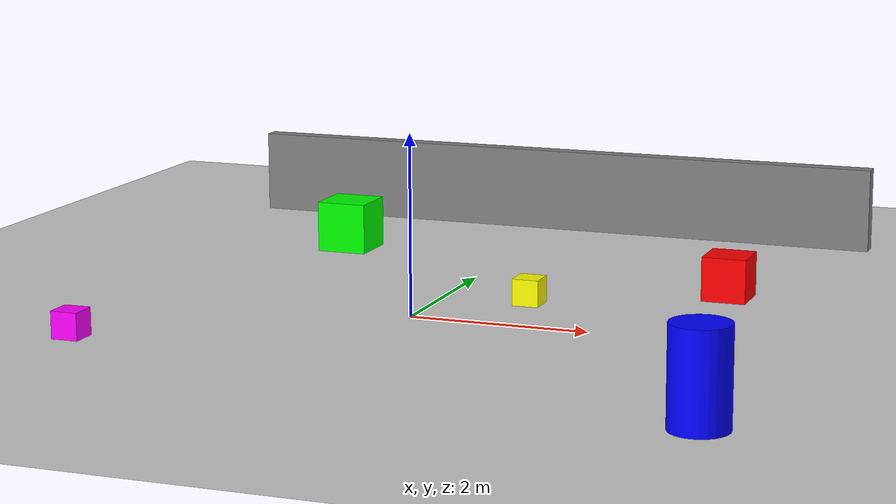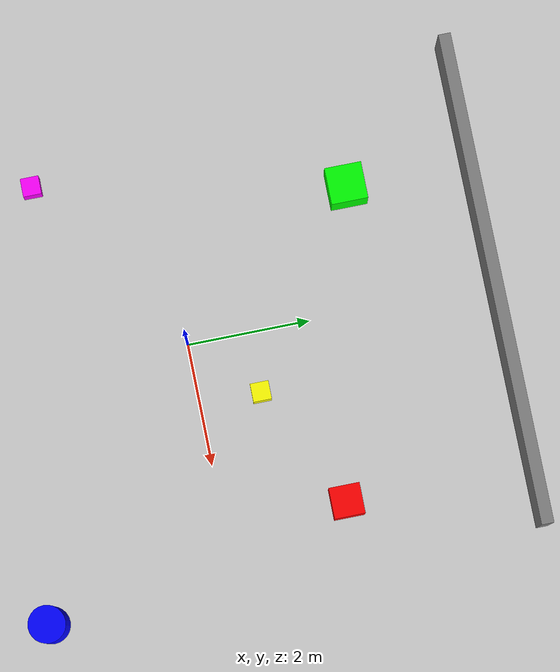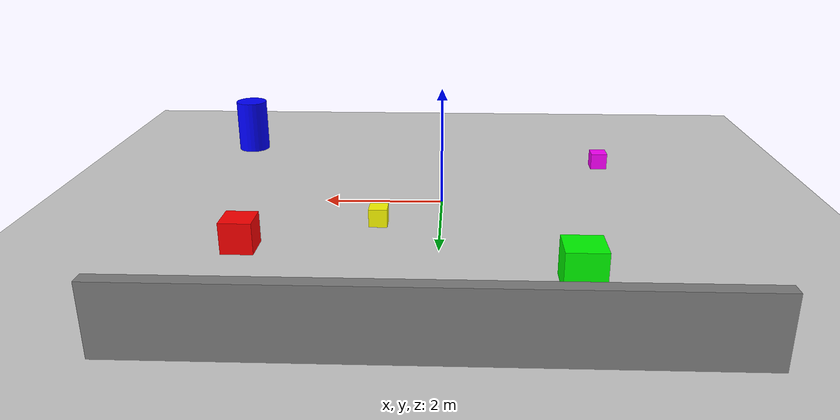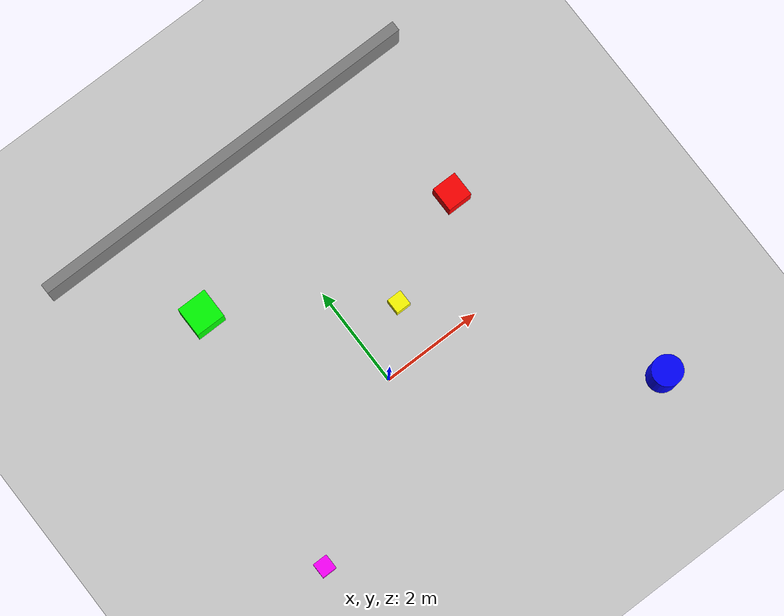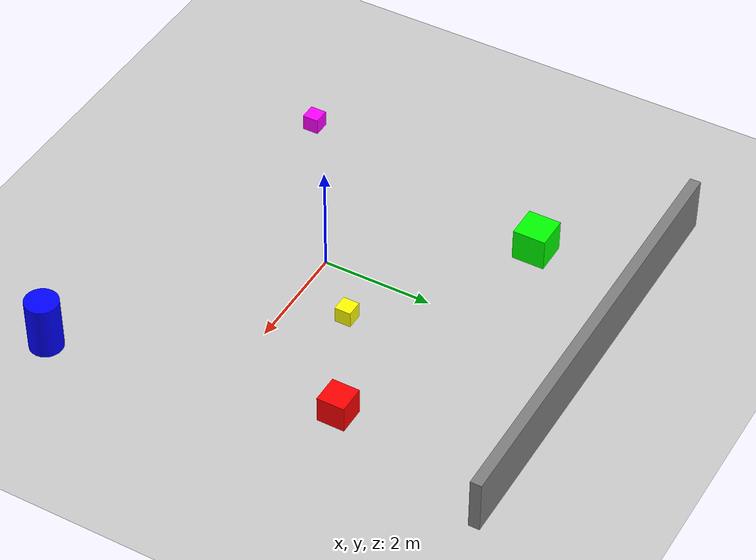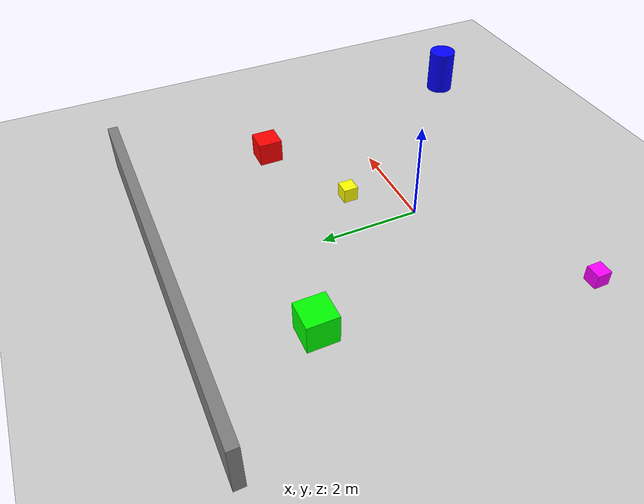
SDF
<?xml version="1.0" ?>
<sdf version="1.8">
  <world name="leo_world">

    <!-- Physics -->
    <physics name="1ms" type="ignored">
      <max_step_size>0.001</max_step_size>
      <real_time_factor>1.0</real_time_factor>
    </physics>

    <!-- Plugin for physics -->
    <plugin filename="gz-sim-physics-system" name="gz::sim::systems::Physics">
    </plugin>

    <!-- Plugin for user commands -->
    <plugin filename="gz-sim-user-commands-system" name="gz::sim::systems::UserCommands">
    </plugin>

    <!-- Plugin for scene -->
    <plugin filename="gz-sim-scene-broadcaster-system" name="gz::sim::systems::SceneBroadcaster">
    </plugin>

    <!-- Plugin for sensors -->
    <plugin filename="gz-sim-sensors-system" name="gz::sim::systems::Sensors">
      <render_engine>ogre2</render_engine>
    </plugin>

    <!-- Light -->
    <light type="directional" name="sun">
      <cast_shadows>true</cast_shadows>
      <pose>0 0 10 0 0 0</pose>
      <diffuse>0.8 0.8 0.8 1</diffuse>
      <specular>0.2 0.2 0.2 1</specular>
      <attenuation>
        <range>1000</range>
        <constant>0.9</constant>
        <linear>0.01</linear>
        <quadratic>0.001</quadratic>
      </attenuation>
      <direction>-0.5 0.1 -0.9</direction>
    </light>

    <!-- Ground plane -->
    <model name="ground_plane">
      <static>true</static>
      <link name="link">
        <collision name="collision">
          <geometry>
            <plane>
              <normal>0 0 1</normal>
              <size>100 100</size>
            </plane>
          </geometry>
        </collision>
        <visual name="visual">
          <geometry>
            <plane>
              <normal>0 0 1</normal>
              <size>100 100</size>
            </plane>
          </geometry>
          <material>
            <ambient>0.8 0.8 0.8 1</ambient>
            <diffuse>0.8 0.8 0.8 1</diffuse>
            <specular>0.8 0.8 0.8 1</specular>
          </material>
        </visual>
      </link>
    </model>

    <!-- Obstacles for object detection -->

    <!-- Box 1 -->
    <model name="box_1">
      <pose>3 2 0.25 0 0 0</pose>
      <static>true</static>
      <link name="link">
        <collision name="collision">
          <geometry>
            <box>
              <size>0.5 0.5 0.5</size>
            </box>
          </geometry>
        </collision>
        <visual name="visual">
          <geometry>
            <box>
              <size>0.5 0.5 0.5</size>
            </box>
          </geometry>
          <material>
            <ambient>1 0 0 1</ambient>
            <diffuse>1 0 0 1</diffuse>
          </material>
        </visual>
      </link>
    </model>

    <!-- Box 2 -->
    <model name="box_2">
      <pose>-2 3 0.3 0 0 0</pose>
      <static>true</static>
      <link name="link">
        <collision name="collision">
          <geometry>
            <box>
              <size>0.6 0.6 0.6</size>
            </box>
          </geometry>
        </collision>
        <visual name="visual">
          <geometry>
            <box>
              <size>0.6 0.6 0.6</size>
            </box>
          </geometry>
          <material>
            <ambient>0 1 0 1</ambient>
            <diffuse>0 1 0 1</diffuse>
          </material>
        </visual>
      </link>
    </model>

    <!-- Cylinder 1 -->
    <model name="cylinder_1">
      <pose>4 -3 0.5 0 0 0</pose>
      <static>true</static>
      <link name="link">
        <collision name="collision">
          <geometry>
            <cylinder>
              <radius>0.3</radius>
              <length>1.0</length>
            </cylinder>
          </geometry>
        </collision>
        <visual name="visual">
          <geometry>
            <cylinder>
              <radius>0.3</radius>
              <length>1.0</length>
            </cylinder>
          </geometry>
          <material>
            <ambient>0 0 1 1</ambient>
            <diffuse>0 0 1 1</diffuse>
          </material>
        </visual>
      </link>
    </model>

    <!-- Wall -->
    <model name="wall">
      <pose>0 5 0.5 0 0 0</pose>
      <static>true</static>
      <link name="link">
        <collision name="collision">
          <geometry>
            <box>
              <size>8 0.2 1.0</size>
            </box>
          </geometry>
        </collision>
        <visual name="visual">
          <geometry>
            <box>
              <size>8 0.2 1.0</size>
            </box>
          </geometry>
          <material>
            <ambient>0.5 0.5 0.5 1</ambient>
            <diffuse>0.5 0.5 0.5 1</diffuse>
          </material>
        </visual>
      </link>
    </model>

    <!-- Multiple small obstacles -->
    <model name="obstacle_1">
      <pose>1 1 0.15 0 0 0</pose>
      <static>true</static>
      <link name="link">
        <collision name="collision">
          <geometry>
            <box>
              <size>0.3 0.3 0.3</size>
            </box>
          </geometry>
        </collision>
        <visual name="visual">
          <geometry>
            <box>
              <size>0.3 0.3 0.3</size>
            </box>
          </geometry>
          <material>
            <ambient>1 1 0 1</ambient>
            <diffuse>1 1 0 1</diffuse>
          </material>
        </visual>
      </link>
    </model>

    <model name="obstacle_2">
      <pose>-3 -2 0.15 0 0 0</pose>
      <static>true</static>
      <link name="link">
        <collision name="collision">
          <geometry>
            <box>
              <size>0.3 0.3 0.3</size>
            </box>
          </geometry>
        </collision>
        <visual name="visual">
          <geometry>
            <box>
              <size>0.3 0.3 0.3</size>
            </box>
          </geometry>
          <material>
            <ambient>1 0 1 1</ambient>
            <diffuse>1 0 1 1</diffuse>
          </material>
        </visual>
      </link>
    </model>

  </world>
</sdf>
